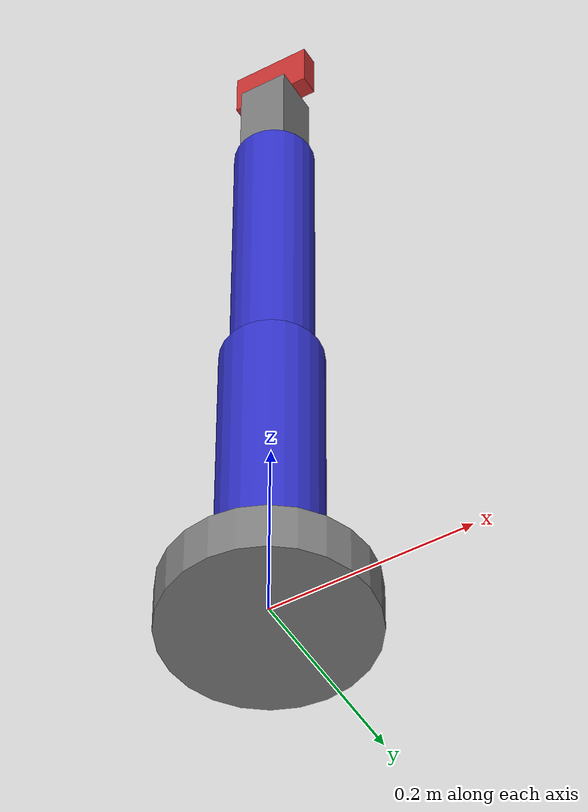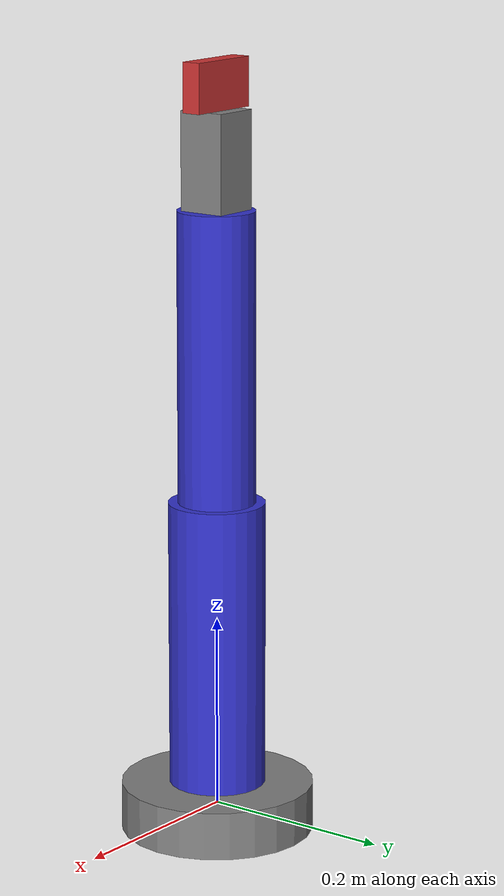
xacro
<?xml version="1.0"?>
<robot xmlns:xacro="http://www.ros.org/wiki/xacro" name="my_robot">

  <!-- Core robot links and joints -->
  <xacro:include filename="$(find my_robot_description)/urdf/arm_core.xacro" />

  <!-- ros2_control hardware interface block -->
  <xacro:include filename="$(find my_robot_description)/urdf/arm.ros2_control.xacro" />

  <!-- Gazebo Harmonic plugin block -->
  <xacro:include filename="$(find my_robot_description)/urdf/arm.gazebo.xacro" />

</robot>

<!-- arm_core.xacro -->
<robot xmlns:xacro="http://www.ros.org/wiki/xacro">

  <material name="blue"><color rgba="0.2 0.2 0.8 1"/></material>
    <material name="gray"><color rgba="0.5 0.5 0.5 1"/></material>
      <material name="red"><color rgba="0.8 0.2 0.2 1"/></material>

        <link name="base_link">
            <visual><geometry><cylinder radius="0.1" length="0.05"/></geometry><material name="gray"/></visual>
                <collision><geometry><cylinder radius="0.1" length="0.05"/></geometry></collision>
                    <inertial><mass value="2.0"/><origin xyz="0 0 0"/><inertia ixx="0.0054" ixy="0.0" ixz="0.0" iyy="0.0054" iyz="0.0" izz="0.01"/></inertial>
                      </link>

                        <joint name="joint1" type="revolute">
                            <parent link="base_link"/><child link="link1"/>
                                <origin xyz="0 0 0.025" rpy="0 0 0"/><axis xyz="0 0 1"/>
                                    <limit lower="-3.14" upper="3.14" effort="100.0" velocity="1.0"/>
                                      </joint>

                                        <link name="link1">
                                            <visual><origin xyz="0 0 0.15" rpy="0 0 0"/><geometry><cylinder radius="0.05" length="0.3"/></geometry><material name="blue"/></visual>
                                                <collision><origin xyz="0 0 0.15" rpy="0 0 0"/><geometry><cylinder radius="0.05" length="0.3"/></geometry></collision>
                                                    <inertial><mass value="1.0"/><origin xyz="0 0 0.15" rpy="0 0 0"/><inertia ixx="0.008" ixy="0.0" ixz="0.0" iyy="0.008" iyz="0.0" izz="0.001"/></inertial>
                                                      </link>

                                                        <joint name="joint2" type="revolute">
                                                            <parent link="link1"/><child link="link2"/>
                                                                <origin xyz="0 0 0.3" rpy="0 0 0"/><axis xyz="0 1 0"/>
                                                                    <limit lower="-1.57" upper="1.57" effort="100.0" velocity="1.0"/>
                                                                      </joint>

                                                                        <link name="link2">
                                                                            <visual><origin xyz="0 0 0.15" rpy="0 0 0"/><geometry><cylinder radius="0.04" length="0.3"/></geometry><material name="blue"/></visual>
                                                                                <collision><origin xyz="0 0 0.15" rpy="0 0 0"/><geometry><cylinder radius="0.04" length="0.3"/></geometry></collision>
                                                                                    <inertial><mass value="0.8"/><origin xyz="0 0 0.15" rpy="0 0 0"/><inertia ixx="0.006" ixy="0.0" ixz="0.0" iyy="0.006" iyz="0.0" izz="0.0006"/></inertial>
                                                                                      </link>

                                                                                        <joint name="joint3" type="revolute">
                                                                                            <parent link="link2"/><child link="link3"/>
                                                                                                <origin xyz="0 0 0.3" rpy="0 0 0"/><axis xyz="0 1 0"/>
                                                                                                    <limit lower="-1.57" upper="1.57" effort="100.0" velocity="1.0"/>
                                                                                                      </joint>

                                                                                                        <link name="link3">
                                                                                                            <visual><origin xyz="0 0 0.05" rpy="0 0 0"/><geometry><box size="0.05 0.05 0.1"/></geometry><material name="gray"/></visual>
                                                                                                                <collision><origin xyz="0 0 0.05" rpy="0 0 0"/><geometry><box size="0.05 0.05 0.1"/></geometry></collision>
                                                                                                                    <inertial><mass value="0.5"/><origin xyz="0 0 0.05" rpy="0 0 0"/><inertia ixx="0.0005" ixy="0.0" ixz="0.0" iyy="0.0005" iyz="0.0" izz="0.0002"/></inertial>
                                                                                                                      </link>

                                                                                                                        <joint name="gripper_joint" type="prismatic">
                                                                                                                            <parent link="link3"/><child link="gripper_link"/>
                                                                                                                                <origin xyz="0 0 0.1" rpy="0 0 0"/><axis xyz="1 0 0"/>
                                                                                                                                    <limit lower="-0.02" upper="0.02" effort="50.0" velocity="0.5"/>
                                                                                                                                      </joint>

                                                                                                                                        <link name="gripper_link">
                                                                                                                                            <visual><origin xyz="0 0 0.025" rpy="0 0 0"/><geometry><box size="0.08 0.02 0.05"/></geometry><material name="red"/></visual>
                                                                                                                                                <collision><origin xyz="0 0 0.025" rpy="0 0 0"/><geometry><box size="0.08 0.02 0.05"/></geometry></collision>
                                                                                                                                                    <inertial><mass value="0.2"/><origin xyz="0 0 0.025" rpy="0 0 0"/><inertia ixx="0.00005" ixy="0.0" ixz="0.0" iyy="0.0001" iyz="0.0" izz="0.0001"/></inertial>
                                                                                                                                                      </link>

                                                                                                                                                      </robot>
